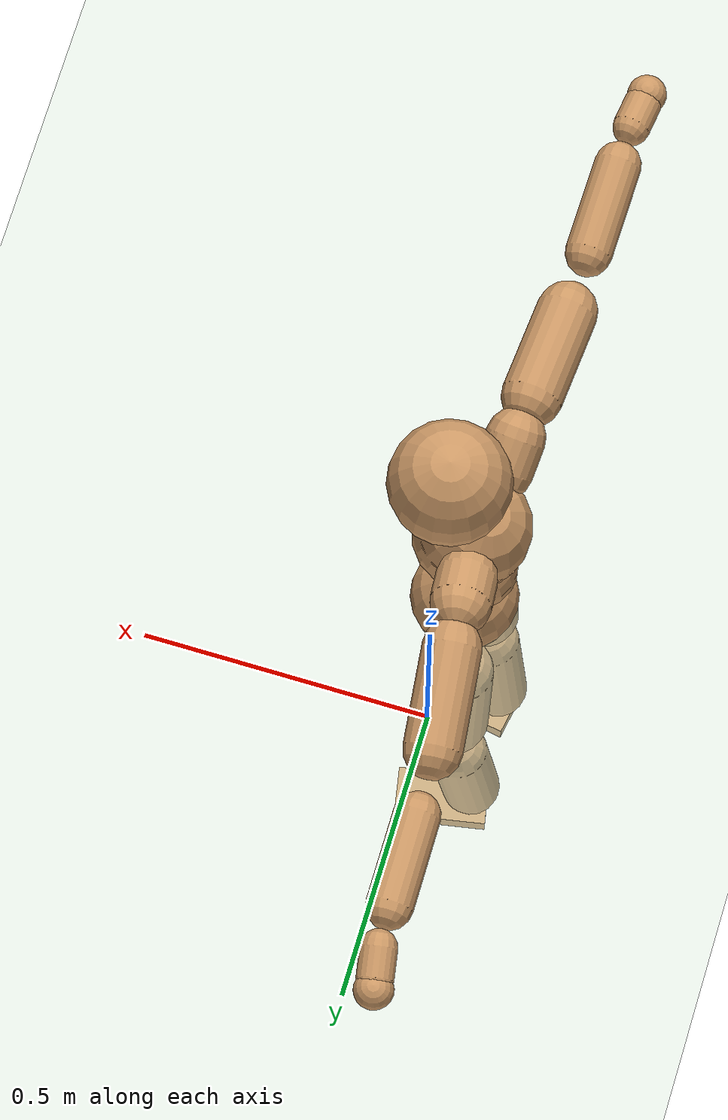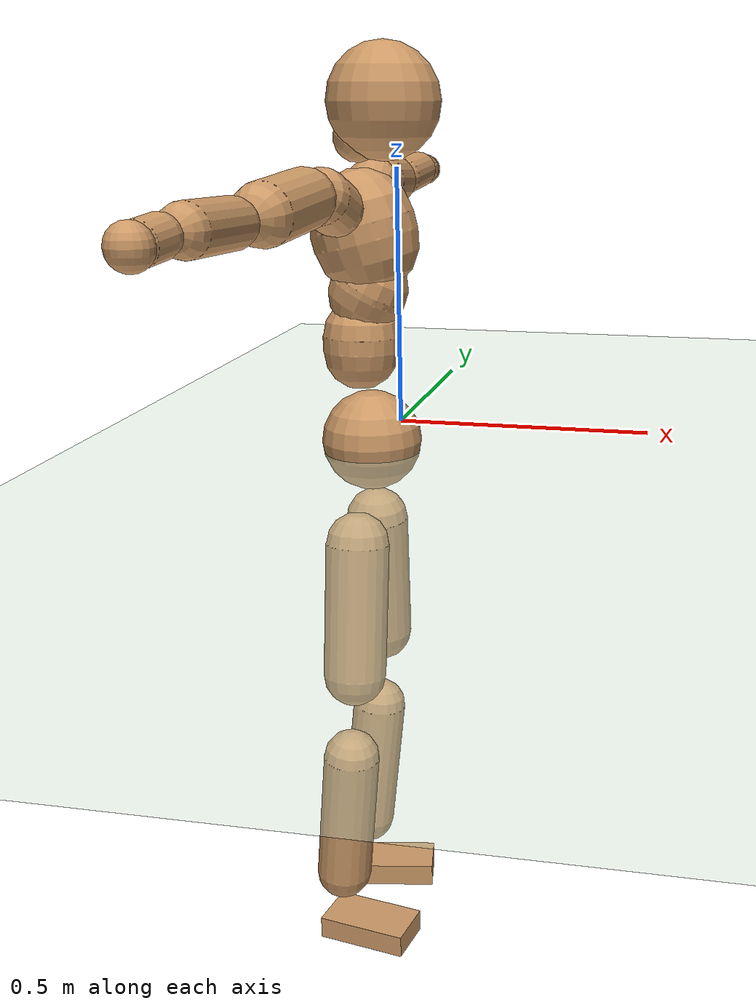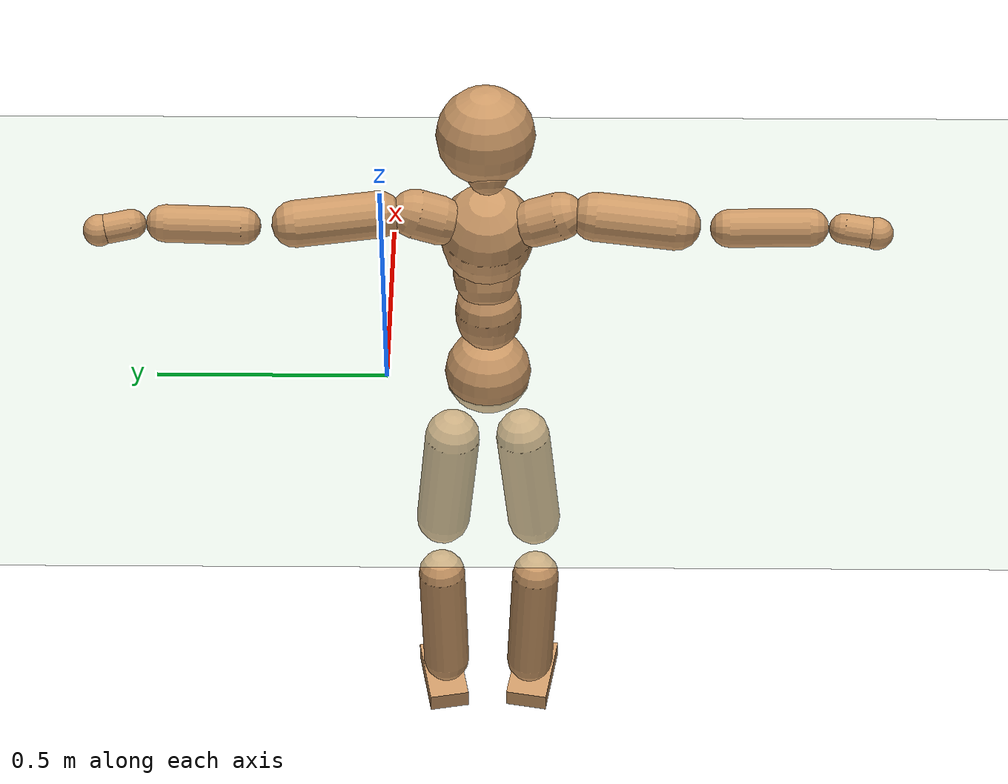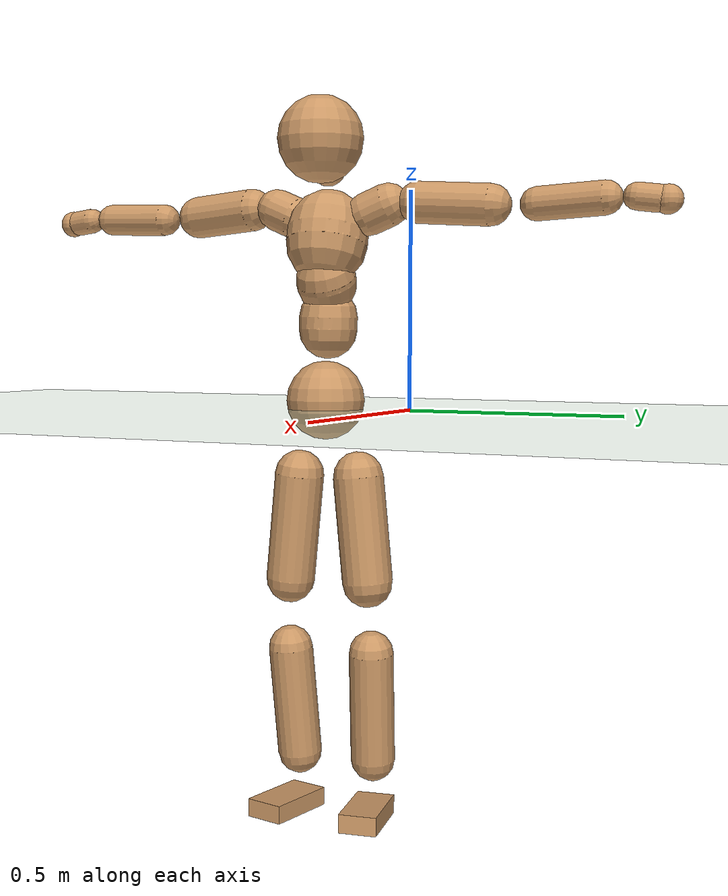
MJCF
<mujoco model="humanoid">
  <compiler coordinate="local" angle="radian"/>
  <default>
    <joint damping="0.0" armature="0.01" stiffness="0.0" limited="true"/>
    <geom conaffinity="1" condim="3" contype="7" margin="0.001" rgba="0.8 0.6 .4 1"/>
  </default>
  <asset>
    <texture type="skybox" builtin="gradient" rgb1=".4 .5 .6" rgb2="0 0 0" width="100" height="100"/>
    <texture builtin="flat" height="1278" mark="cross" markrgb="1 1 1" name="texgeom" random="0.01" rgb1="0.8 0.6 0.4" rgb2="0.8 0.6 0.4" type="cube" width="127"/>
    <texture builtin="checker" height="100" name="texplane" rgb1="0 0 0" rgb2="0.8 0.8 0.8" type="2d" width="100"/>
    <material name="MatPlane" reflectance="0.5" shininess="1" specular="1" texrepeat="60 60" texture="texplane"/>
    <material name="geom" texture="texgeom" texuniform="true"/>
  </asset>
  <worldbody>
    <light cutoff="100" diffuse="1 1 1" dir="-0 0 -1.3" directional="true" exponent="1" pos="0 0 1.3" specular=".1 .1 .1"/>
    <geom conaffinity="1" condim="3" name="floor" pos="0 0 0" rgba="0.8 0.9 0.8 1" size="100 100 .2" type="plane" material="MatPlane"/>
    <body name="Pelvis" pos="-0.0011 -0.2199 0.0185">
      <freejoint name="Pelvis"/>
      <geom type="sphere" contype="1" conaffinity="1" density="500" size="0.0934" pos="0.0000 0.0000 0.0000" name="Pelvis"/>
      <body name="L_Hip" pos="-0.0154 0.071 -0.0968">
        <joint name="L_Hip_x" type="hinge" pos="0 0 0" axis="1 0 0" stiffness="800" damping="80" armature="0.02" range="-180.0000 180.0000"/>
        <joint name="L_Hip_y" type="hinge" pos="0 0 0" axis="0 1 0" stiffness="800" damping="80" armature="0.02" range="-180.0000 180.0000"/>
        <joint name="L_Hip_z" type="hinge" pos="0 0 0" axis="0 0 1" stiffness="800" damping="80" armature="0.02" range="-180.0000 180.0000"/>
        <geom type="capsule" contype="1" conaffinity="1" density="500" fromto="-0.0009 0.0078 -0.0844 -0.0034 0.0313 -0.3375" size="0.0603" name="L_Hip"/>
        <body name="L_Knee" pos="-0.0043 0.0392 -0.4219">
          <joint name="L_Knee_x" type="hinge" pos="0 0 0" axis="1 0 0" stiffness="800" damping="80" armature="0.02" range="-180.0000 180.0000"/>
          <joint name="L_Knee_y" type="hinge" pos="0 0 0" axis="0 1 0" stiffness="800" damping="80" armature="0.02" range="-180.0000 180.0000"/>
          <joint name="L_Knee_z" type="hinge" pos="0 0 0" axis="0 0 1" stiffness="800" damping="80" armature="0.02" range="-180.0000 180.0000"/>
          <geom type="capsule" contype="1" conaffinity="1" density="500" fromto="-0.0095 -0.0027 -0.0898 -0.0379 -0.0109 -0.3591" size="0.0538" name="L_Knee"/>
          <body name="L_Ankle" pos="-0.0473 -0.0136 -0.4489">
            <joint name="L_Ankle_x" type="hinge" pos="0 0 0" axis="1 0 0" stiffness="800" damping="80" armature="0.02" range="-180.0000 180.0000"/>
            <joint name="L_Ankle_y" type="hinge" pos="0 0 0" axis="0 1 0" stiffness="800" damping="80" armature="0.02" range="-180.0000 180.0000"/>
            <joint name="L_Ankle_z" type="hinge" pos="0 0 0" axis="0 0 1" stiffness="800" damping="80" armature="0.02" range="-180.0000 180.0000"/>
            <geom type="box" contype="1" conaffinity="1" density="500" pos="0.0620 0.0112 -0.0311" size="0.0862 0.0461 0.0228" quat="0.9960 0.0000 0.0000 0.0894" name="L_Ankle"/>
            <body name="L_Toe" pos="0.1241 0.0225 -0.0623">
              <joint name="L_Toe_x" type="hinge" pos="0 0 0" axis="1 0 0" stiffness="500" damping="50" armature="0.02" range="-180.0000 180.0000"/>
              <joint name="L_Toe_y" type="hinge" pos="0 0 0" axis="0 1 0" stiffness="500" damping="50" armature="0.02" range="-180.0000 180.0000"/>
              <joint name="L_Toe_z" type="hinge" pos="0 0 0" axis="0 0 1" stiffness="500" damping="50" armature="0.02" range="-180.0000 180.0000"/>
              <geom type="box" contype="1" conaffinity="1" density="500" pos="0.0000 0.0000 0.0302" size="0.001 0.0023 0.0011" quat="0.9954 0.0000 0.0000 0.0957" name="L_Toe"/>
            </body>
          </body>
        </body>
      </body>
      <body name="R_Hip" pos="-0.0102 -0.0679 -0.096">
        <joint name="R_Hip_x" type="hinge" pos="0 0 0" axis="1 0 0" stiffness="800" damping="80" armature="0.02" range="-180.0000 180.0000"/>
        <joint name="R_Hip_y" type="hinge" pos="0 0 0" axis="0 1 0" stiffness="800" damping="80" armature="0.02" range="-180.0000 180.0000"/>
        <joint name="R_Hip_z" type="hinge" pos="0 0 0" axis="0 0 1" stiffness="800" damping="80" armature="0.02" range="-180.0000 180.0000"/>
        <geom type="capsule" contype="1" conaffinity="1" density="500" fromto="-0.0015 -0.0093 -0.0859 -0.0061 -0.0373 -0.3435" size="0.0594" name="R_Hip"/>
        <body name="R_Knee" pos="-0.0076 -0.0466 -0.4293">
          <joint name="R_Knee_x" type="hinge" pos="0 0 0" axis="1 0 0" stiffness="800" damping="80" armature="0.02" range="-180.0000 180.0000"/>
          <joint name="R_Knee_y" type="hinge" pos="0 0 0" axis="0 1 0" stiffness="800" damping="80" armature="0.02" range="-180.0000 180.0000"/>
          <joint name="R_Knee_z" type="hinge" pos="0 0 0" axis="0 0 1" stiffness="800" damping="80" armature="0.02" range="-180.0000 180.0000"/>
          <geom type="capsule" contype="1" conaffinity="1" density="500" fromto="-0.0088 0.0035 -0.0897 -0.0353 0.0141 -0.3588" size="0.054" name="R_Knee"/>
          <body name="R_Ankle" pos="-0.0441 0.0177 -0.4485">
            <joint name="R_Ankle_x" type="hinge" pos="0 0 0" axis="1 0 0" stiffness="800" damping="80" armature="0.02" range="-180.0000 180.0000"/>
            <joint name="R_Ankle_y" type="hinge" pos="0 0 0" axis="0 1 0" stiffness="800" damping="80" armature="0.02" range="-180.0000 180.0000"/>
            <joint name="R_Ankle_z" type="hinge" pos="0 0 0" axis="0 0 1" stiffness="800" damping="80" armature="0.02" range="-180.0000 180.0000"/>
            <geom type="box" contype="1" conaffinity="1" density="500" pos="0.0640 -0.0116 -0.0266" size="0.089 0.0484 0.022" quat="0.9960 0.0000 0.0000 -0.0896" name="R_Ankle"/>
            <body name="R_Toe" pos="0.128 -0.0232 -0.0533">
              <joint name="R_Toe_x" type="hinge" pos="0 0 0" axis="1 0 0" stiffness="500" damping="50" armature="0.02" range="-180.0000 180.0000"/>
              <joint name="R_Toe_y" type="hinge" pos="0 0 0" axis="0 1 0" stiffness="500" damping="50" armature="0.02" range="-180.0000 180.0000"/>
              <joint name="R_Toe_z" type="hinge" pos="0 0 0" axis="0 0 1" stiffness="500" damping="50" armature="0.02" range="-180.0000 180.0000"/>
              <geom type="box" contype="1" conaffinity="1" density="500" pos="0.0000 0.0000 0.0294" size="0.0009 0.0023 0.0012" quat="0.9967 0.0000 0.0000 -0.0808" name="R_Toe"/>
            </body>
          </body>
        </body>
      </body>
      <body name="Torso" pos="-0.0172 -0.0032 0.1109">
        <joint name="Torso_x" type="hinge" pos="0 0 0" axis="1 0 0" stiffness="1000" damping="100" armature="0.02" range="-180.0000 180.0000"/>
        <joint name="Torso_y" type="hinge" pos="0 0 0" axis="0 1 0" stiffness="1000" damping="100" armature="0.02" range="-180.0000 180.0000"/>
        <joint name="Torso_z" type="hinge" pos="0 0 0" axis="0 0 1" stiffness="1000" damping="100" armature="0.02" range="-180.0000 180.0000"/>
        <geom type="capsule" contype="1" conaffinity="1" density="500" fromto="0.0010 0.0028 0.0847 0.0007 0.0019 0.0565" size="0.0697" name="Torso"/>
        <body name="Spine" pos="0.0017 0.0046 0.1412">
          <joint name="Spine_x" type="hinge" pos="0 0 0" axis="1 0 0" stiffness="1000" damping="100" armature="0.02" range="-180.0000 180.0000"/>
          <joint name="Spine_y" type="hinge" pos="0 0 0" axis="0 1 0" stiffness="1000" damping="100" armature="0.02" range="-180.0000 180.0000"/>
          <joint name="Spine_z" type="hinge" pos="0 0 0" axis="0 0 1" stiffness="1000" damping="100" armature="0.02" range="-180.0000 180.0000"/>
          <geom type="capsule" contype="1" conaffinity="1" density="500" fromto="0.0177 0.0010 0.0322 0.0118 0.0007 0.0215" size="0.071" name="Spine"/>
          <body name="Chest" pos="0.0295 0.0017 0.0537">
            <joint name="Chest_x" type="hinge" pos="0 0 0" axis="1 0 0" stiffness="1000" damping="100" armature="0.02" range="-180.0000 180.0000"/>
            <joint name="Chest_y" type="hinge" pos="0 0 0" axis="0 1 0" stiffness="1000" damping="100" armature="0.02" range="-180.0000 180.0000"/>
            <joint name="Chest_z" type="hinge" pos="0 0 0" axis="0 0 1" stiffness="1000" damping="100" armature="0.02" range="-180.0000 180.0000"/>
            <geom type="capsule" contype="1" conaffinity="1" density="500" fromto="-0.0237 -0.0011 0.0927 -0.0158 -0.0007 0.0618" size="0.0962" name="Chest"/>
            <body name="Neck" pos="-0.0406 -0.0035 0.223">
              <joint name="Neck_x" type="hinge" pos="0 0 0" axis="1 0 0" stiffness="500" damping="50" armature="0.02" range="-180.0000 180.0000"/>
              <joint name="Neck_y" type="hinge" pos="0 0 0" axis="0 1 0" stiffness="500" damping="50" armature="0.02" range="-180.0000 180.0000"/>
              <joint name="Neck_z" type="hinge" pos="0 0 0" axis="0 0 1" stiffness="500" damping="50" armature="0.02" range="-180.0000 180.0000"/>
              <geom type="capsule" contype="1" conaffinity="1" density="500" fromto="0.0122 0.0011 0.0153 0.0487 0.0045 0.0612" size="0.0422" name="Neck"/>
              <body name="Head" pos="0.0609 0.0056 0.0765">
                <joint name="Head_x" type="hinge" pos="0 0 0" axis="1 0 0" stiffness="500" damping="50" armature="0.02" range="-180.0000 180.0000"/>
                <joint name="Head_y" type="hinge" pos="0 0 0" axis="0 1 0" stiffness="500" damping="50" armature="0.02" range="-180.0000 180.0000"/>
                <joint name="Head_z" type="hinge" pos="0 0 0" axis="0 0 1" stiffness="500" damping="50" armature="0.02" range="-180.0000 180.0000"/>
                <geom type="sphere" contype="1" conaffinity="1" density="500" size="0.1011" pos="0.0000 0.0000 0.0000" name="Head"/>
              </body>
            </body>
            <body name="L_Thorax" pos="-0.0364 0.0778 0.1213">
              <joint name="L_Thorax_x" type="hinge" pos="0 0 0" axis="1 0 0" stiffness="500" damping="50" armature="0.02" range="-180.0000 180.0000"/>
              <joint name="L_Thorax_y" type="hinge" pos="0 0 0" axis="0 1 0" stiffness="500" damping="50" armature="0.02" range="-180.0000 180.0000"/>
              <joint name="L_Thorax_z" type="hinge" pos="0 0 0" axis="0 0 1" stiffness="500" damping="50" armature="0.02" range="-180.0000 180.0000"/>
              <geom type="capsule" contype="1" conaffinity="1" density="500" fromto="-0.0015 0.0171 0.0068 -0.0059 0.0682 0.0273" size="0.0507" name="L_Thorax"/>
              <body name="L_Shoulder" pos="-0.0074 0.0853 0.0341">
                <joint name="L_Shoulder_x" type="hinge" pos="0 0 0" axis="1 0 0" stiffness="500" damping="50" armature="0.02" range="-720.0000 720.0000"/>
                <joint name="L_Shoulder_y" type="hinge" pos="0 0 0" axis="0 1 0" stiffness="500" damping="50" armature="0.02" range="-720.0000 720.0000"/>
                <joint name="L_Shoulder_z" type="hinge" pos="0 0 0" axis="0 0 1" stiffness="500" damping="50" armature="0.02" range="-720.0000 720.0000"/>
                <geom type="capsule" contype="1" conaffinity="1" density="500" fromto="-0.0059 0.0561 -0.0036 -0.0237 0.2244 -0.0144" size="0.0486" name="L_Shoulder"/>
                <body name="L_Elbow" pos="-0.0296 0.2805 -0.018">
                  <joint name="L_Elbow_x" type="hinge" pos="0 0 0" axis="1 0 0" stiffness="500" damping="50" armature="0.02" range="-720.0000 720.0000"/>
                  <joint name="L_Elbow_y" type="hinge" pos="0 0 0" axis="0 1 0" stiffness="500" damping="50" armature="0.02" range="-720.0000 720.0000"/>
                  <joint name="L_Elbow_z" type="hinge" pos="0 0 0" axis="0 0 1" stiffness="500" damping="50" armature="0.02" range="-720.0000 720.0000"/>
                  <geom type="capsule" contype="1" conaffinity="1" density="500" fromto="-0.0003 0.0518 0.0023 -0.0012 0.2072 0.0092" size="0.0384" name="L_Elbow"/>
                  <body name="L_Wrist" pos="-0.0015 0.259 0.0115">
                    <joint name="L_Wrist_x" type="hinge" pos="0 0 0" axis="1 0 0" stiffness="300" damping="30" armature="0.02" range="-180.0000 180.0000"/>
                    <joint name="L_Wrist_y" type="hinge" pos="0 0 0" axis="0 1 0" stiffness="300" damping="30" armature="0.02" range="-180.0000 180.0000"/>
                    <joint name="L_Wrist_z" type="hinge" pos="0 0 0" axis="0 0 1" stiffness="300" damping="30" armature="0.02" range="-180.0000 180.0000"/>
                    <geom type="capsule" contype="1" conaffinity="1" density="500" fromto="-0.0027 0.0162 -0.0020 -0.0109 0.0649 -0.0080" size="0.0304" name="L_Wrist"/>
                    <body name="L_Hand" pos="-0.0137 0.0812 -0.01">
                      <joint name="L_Hand_x" type="hinge" pos="0 0 0" axis="1 0 0" stiffness="300" damping="30" armature="0.02" range="-180.0000 180.0000"/>
                      <joint name="L_Hand_y" type="hinge" pos="0 0 0" axis="0 1 0" stiffness="300" damping="30" armature="0.02" range="-180.0000 180.0000"/>
                      <joint name="L_Hand_z" type="hinge" pos="0 0 0" axis="0 0 1" stiffness="300" damping="30" armature="0.02" range="-180.0000 180.0000"/>
                      <geom type="sphere" contype="1" conaffinity="1" density="500" size="0.0326" pos="0.0000 0.0000 0.0000" name="L_Hand"/>
                    </body>
                  </body>
                </body>
              </body>
            </body>
            <body name="R_Thorax" pos="-0.0413 -0.0796 0.119">
              <joint name="R_Thorax_x" type="hinge" pos="0 0 0" axis="1 0 0" stiffness="500" damping="50" armature="0.02" range="-180.0000 180.0000"/>
              <joint name="R_Thorax_y" type="hinge" pos="0 0 0" axis="0 1 0" stiffness="500" damping="50" armature="0.02" range="-180.0000 180.0000"/>
              <joint name="R_Thorax_z" type="hinge" pos="0 0 0" axis="0 0 1" stiffness="500" damping="50" armature="0.02" range="-180.0000 180.0000"/>
              <geom type="capsule" contype="1" conaffinity="1" density="500" fromto="-0.0017 -0.0177 0.0073 -0.0068 -0.0707 0.0292" size="0.0495" name="R_Thorax"/>
              <body name="R_Shoulder" pos="-0.0085 -0.0884 0.0365">
                <joint name="R_Shoulder_x" type="hinge" pos="0 0 0" axis="1 0 0" stiffness="500" damping="50" armature="0.02" range="-720.0000 720.0000"/>
                <joint name="R_Shoulder_y" type="hinge" pos="0 0 0" axis="0 1 0" stiffness="500" damping="50" armature="0.02" range="-720.0000 720.0000"/>
                <joint name="R_Shoulder_z" type="hinge" pos="0 0 0" axis="0 0 1" stiffness="500" damping="50" armature="0.02" range="-720.0000 720.0000"/>
                <geom type="capsule" contype="1" conaffinity="1" density="500" fromto="-0.0044 -0.0542 -0.0038 -0.0178 -0.2167 -0.0152" size="0.0507" name="R_Shoulder"/>
                <body name="R_Elbow" pos="-0.0222 -0.2709 -0.019">
                  <joint name="R_Elbow_x" type="hinge" pos="0 0 0" axis="1 0 0" stiffness="500" damping="50" armature="0.02" range="-720.0000 720.0000"/>
                  <joint name="R_Elbow_y" type="hinge" pos="0 0 0" axis="0 1 0" stiffness="500" damping="50" armature="0.02" range="-720.0000 720.0000"/>
                  <joint name="R_Elbow_z" type="hinge" pos="0 0 0" axis="0 0 1" stiffness="500" damping="50" armature="0.02" range="-720.0000 720.0000"/>
                  <geom type="capsule" contype="1" conaffinity="1" density="500" fromto="-0.0012 -0.0538 0.0019 -0.0050 -0.2151 0.0077" size="0.0391" name="R_Elbow"/>
                  <body name="R_Wrist" pos="-0.0062 -0.2689 0.0096">
                    <joint name="R_Wrist_x" type="hinge" pos="0 0 0" axis="1 0 0" stiffness="300" damping="30" armature="0.02" range="-180.0000 180.0000"/>
                    <joint name="R_Wrist_y" type="hinge" pos="0 0 0" axis="0 1 0" stiffness="300" damping="30" armature="0.02" range="-180.0000 180.0000"/>
                    <joint name="R_Wrist_z" type="hinge" pos="0 0 0" axis="0 0 1" stiffness="300" damping="30" armature="0.02" range="-180.0000 180.0000"/>
                    <geom type="capsule" contype="1" conaffinity="1" density="500" fromto="-0.0021 -0.0164 -0.0015 -0.0084 -0.0658 -0.0060" size="0.0312" name="R_Wrist"/>
                    <body name="R_Hand" pos="-0.0106 -0.0822 -0.0074">
                      <joint name="R_Hand_x" type="hinge" pos="0 0 0" axis="1 0 0" stiffness="300" damping="30" armature="0.02" range="-180.0000 180.0000"/>
                      <joint name="R_Hand_y" type="hinge" pos="0 0 0" axis="0 1 0" stiffness="300" damping="30" armature="0.02" range="-180.0000 180.0000"/>
                      <joint name="R_Hand_z" type="hinge" pos="0 0 0" axis="0 0 1" stiffness="300" damping="30" armature="0.02" range="-180.0000 180.0000"/>
                      <geom type="sphere" contype="1" conaffinity="1" density="500" size="0.0329" pos="0.0000 0.0000 0.0000" name="R_Hand"/>
                    </body>
                  </body>
                </body>
              </body>
            </body>
          </body>
        </body>
      </body>
    </body>
  </worldbody>
  <actuator>
    <motor name="L_Hip_x" joint="L_Hip_x" gear="500"/>
    <motor name="L_Hip_y" joint="L_Hip_y" gear="500"/>
    <motor name="L_Hip_z" joint="L_Hip_z" gear="500"/>
    <motor name="L_Knee_x" joint="L_Knee_x" gear="500"/>
    <motor name="L_Knee_y" joint="L_Knee_y" gear="500"/>
    <motor name="L_Knee_z" joint="L_Knee_z" gear="500"/>
    <motor name="L_Ankle_x" joint="L_Ankle_x" gear="500"/>
    <motor name="L_Ankle_y" joint="L_Ankle_y" gear="500"/>
    <motor name="L_Ankle_z" joint="L_Ankle_z" gear="500"/>
    <motor name="L_Toe_x" joint="L_Toe_x" gear="500"/>
    <motor name="L_Toe_y" joint="L_Toe_y" gear="500"/>
    <motor name="L_Toe_z" joint="L_Toe_z" gear="500"/>
    <motor name="R_Hip_x" joint="R_Hip_x" gear="500"/>
    <motor name="R_Hip_y" joint="R_Hip_y" gear="500"/>
    <motor name="R_Hip_z" joint="R_Hip_z" gear="500"/>
    <motor name="R_Knee_x" joint="R_Knee_x" gear="500"/>
    <motor name="R_Knee_y" joint="R_Knee_y" gear="500"/>
    <motor name="R_Knee_z" joint="R_Knee_z" gear="500"/>
    <motor name="R_Ankle_x" joint="R_Ankle_x" gear="500"/>
    <motor name="R_Ankle_y" joint="R_Ankle_y" gear="500"/>
    <motor name="R_Ankle_z" joint="R_Ankle_z" gear="500"/>
    <motor name="R_Toe_x" joint="R_Toe_x" gear="500"/>
    <motor name="R_Toe_y" joint="R_Toe_y" gear="500"/>
    <motor name="R_Toe_z" joint="R_Toe_z" gear="500"/>
    <motor name="Torso_x" joint="Torso_x" gear="500"/>
    <motor name="Torso_y" joint="Torso_y" gear="500"/>
    <motor name="Torso_z" joint="Torso_z" gear="500"/>
    <motor name="Spine_x" joint="Spine_x" gear="500"/>
    <motor name="Spine_y" joint="Spine_y" gear="500"/>
    <motor name="Spine_z" joint="Spine_z" gear="500"/>
    <motor name="Chest_x" joint="Chest_x" gear="500"/>
    <motor name="Chest_y" joint="Chest_y" gear="500"/>
    <motor name="Chest_z" joint="Chest_z" gear="500"/>
    <motor name="Neck_x" joint="Neck_x" gear="500"/>
    <motor name="Neck_y" joint="Neck_y" gear="500"/>
    <motor name="Neck_z" joint="Neck_z" gear="500"/>
    <motor name="Head_x" joint="Head_x" gear="500"/>
    <motor name="Head_y" joint="Head_y" gear="500"/>
    <motor name="Head_z" joint="Head_z" gear="500"/>
    <motor name="L_Thorax_x" joint="L_Thorax_x" gear="500"/>
    <motor name="L_Thorax_y" joint="L_Thorax_y" gear="500"/>
    <motor name="L_Thorax_z" joint="L_Thorax_z" gear="500"/>
    <motor name="L_Shoulder_x" joint="L_Shoulder_x" gear="500"/>
    <motor name="L_Shoulder_y" joint="L_Shoulder_y" gear="500"/>
    <motor name="L_Shoulder_z" joint="L_Shoulder_z" gear="500"/>
    <motor name="L_Elbow_x" joint="L_Elbow_x" gear="500"/>
    <motor name="L_Elbow_y" joint="L_Elbow_y" gear="500"/>
    <motor name="L_Elbow_z" joint="L_Elbow_z" gear="500"/>
    <motor name="L_Wrist_x" joint="L_Wrist_x" gear="500"/>
    <motor name="L_Wrist_y" joint="L_Wrist_y" gear="500"/>
    <motor name="L_Wrist_z" joint="L_Wrist_z" gear="500"/>
    <motor name="L_Hand_x" joint="L_Hand_x" gear="500"/>
    <motor name="L_Hand_y" joint="L_Hand_y" gear="500"/>
    <motor name="L_Hand_z" joint="L_Hand_z" gear="500"/>
    <motor name="R_Thorax_x" joint="R_Thorax_x" gear="500"/>
    <motor name="R_Thorax_y" joint="R_Thorax_y" gear="500"/>
    <motor name="R_Thorax_z" joint="R_Thorax_z" gear="500"/>
    <motor name="R_Shoulder_x" joint="R_Shoulder_x" gear="500"/>
    <motor name="R_Shoulder_y" joint="R_Shoulder_y" gear="500"/>
    <motor name="R_Shoulder_z" joint="R_Shoulder_z" gear="500"/>
    <motor name="R_Elbow_x" joint="R_Elbow_x" gear="500"/>
    <motor name="R_Elbow_y" joint="R_Elbow_y" gear="500"/>
    <motor name="R_Elbow_z" joint="R_Elbow_z" gear="500"/>
    <motor name="R_Wrist_x" joint="R_Wrist_x" gear="500"/>
    <motor name="R_Wrist_y" joint="R_Wrist_y" gear="500"/>
    <motor name="R_Wrist_z" joint="R_Wrist_z" gear="500"/>
    <motor name="R_Hand_x" joint="R_Hand_x" gear="500"/>
    <motor name="R_Hand_y" joint="R_Hand_y" gear="500"/>
    <motor name="R_Hand_z" joint="R_Hand_z" gear="500"/>
  </actuator>
  <contact>
    <exclude body1="Torso" body2="Chest"/>
    <exclude body1="Head" body2="Chest"/>
    <exclude body1="R_Knee" body2="R_Toe"/>
    <exclude body1="R_Knee" body2="L_Ankle"/>
    <exclude body1="R_Knee" body2="L_Toe"/>
    <exclude body1="L_Knee" body2="L_Toe"/>
    <exclude body1="L_Knee" body2="R_Ankle"/>
    <exclude body1="L_Knee" body2="R_Toe"/>
    <exclude body1="L_Shoulder" body2="Chest"/>
    <exclude body1="R_Shoulder" body2="Chest"/>
  </contact>
  <sensor/>
  <size njmax="700" nconmax="700"/>
</mujoco>
